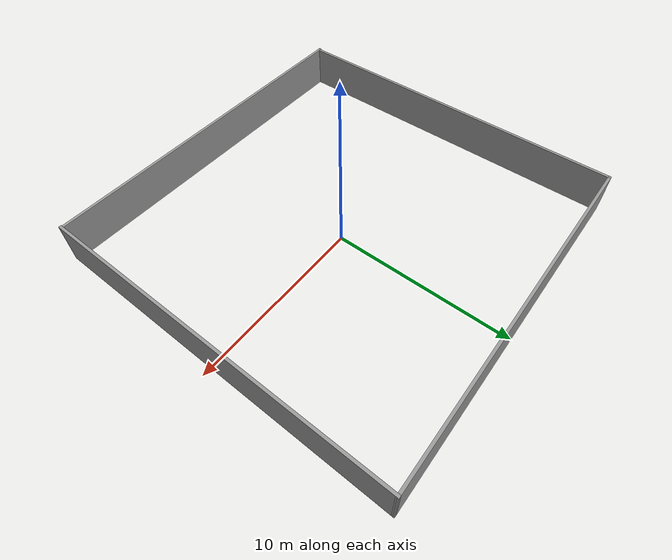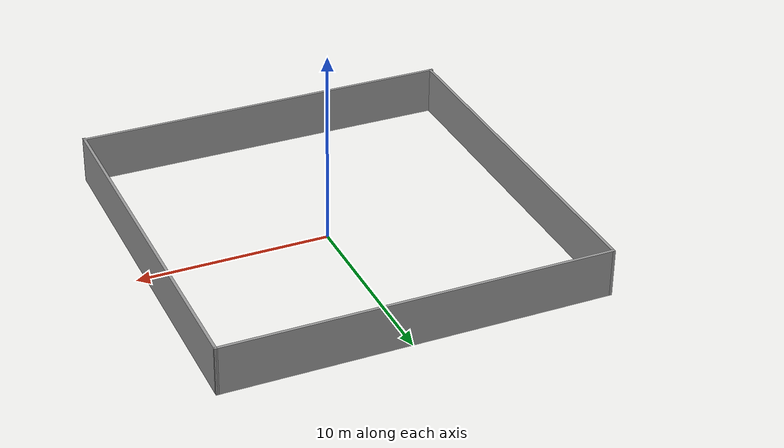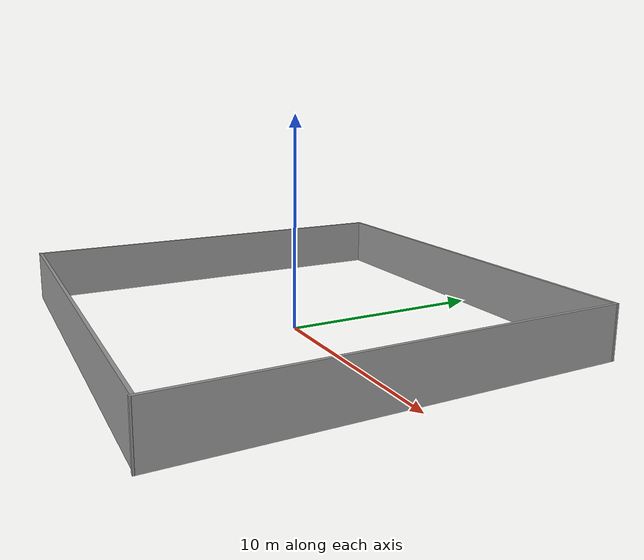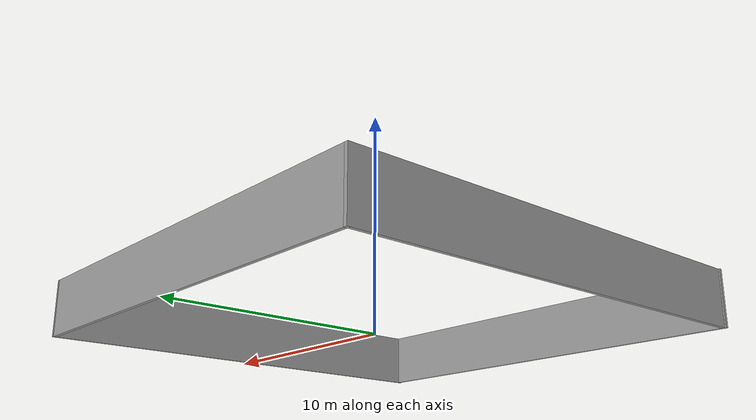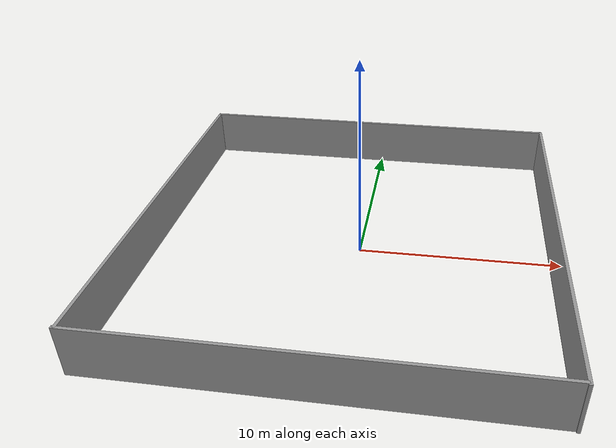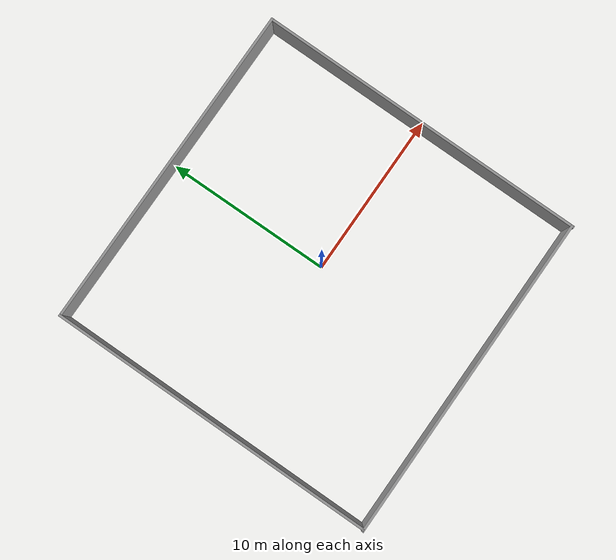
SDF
<?xml version='1.0'?>
<sdf version='1.6'>
  <model name='wall'>
    <pose frame=''>-0.458133 -0.044771 0 0 -0 0</pose>
    <link name='Wall_0'>
      <collision name='Wall_0_Collision'>
        <geometry>
          <box>
            <size>20 0.15 2.5</size>
          </box>
        </geometry>
        <pose frame=''>0 0 1.25 0 -0 0</pose>
      </collision>
      <visual name='Wall_0_Visual'>
        <pose frame=''>0 0 1.25 0 -0 0</pose>
        <geometry>
          <box>
            <size>20 0.15 2.5</size>
          </box>
        </geometry>
        <material>
          <script>
            <uri>file://media/materials/scripts/gazebo.material</uri>
            <name>Gazebo/Grey</name>
          </script>
          <ambient>1 1 1 1</ambient>
        </material>
      </visual>
      <pose frame=''>-9.89494 0.056022 0 0 -0 1.5708</pose>
    </link>
    <link name='Wall_2'>
      <collision name='Wall_2_Collision'>
        <geometry>
          <box>
            <size>20 0.15 2.5</size>
          </box>
        </geometry>
        <pose frame=''>0 0 1.25 0 -0 0</pose>
      </collision>
      <visual name='Wall_2_Visual'>
        <pose frame=''>0 0 1.25 0 -0 0</pose>
        <geometry>
          <box>
            <size>20 0.15 2.5</size>
          </box>
        </geometry>
        <material>
          <script>
            <uri>file://media/materials/scripts/gazebo.material</uri>
            <name>Gazebo/Grey</name>
          </script>
          <ambient>1 1 1 1</ambient>
        </material>
      </visual>
      <pose frame=''>0.030057 9.98102 0 0 -0 0</pose>
    </link>
    <link name='Wall_3'>
      <collision name='Wall_3_Collision'>
        <geometry>
          <box>
            <size>20.1121 0.15 2.5</size>
          </box>
        </geometry>
        <pose frame=''>0 0 1.25 0 -0 0</pose>
      </collision>
      <visual name='Wall_3_Visual'>
        <pose frame=''>0 0 1.25 0 -0 0</pose>
        <geometry>
          <box>
            <size>20.1121 0.15 2.5</size>
          </box>
        </geometry>
        <material>
          <script>
            <uri>file://media/materials/scripts/gazebo.material</uri>
            <name>Gazebo/Grey</name>
          </script>
          <ambient>1 1 1 1</ambient>
        </material>
      </visual>
      <pose frame=''>9.92489 0 0 0 0 -1.57382</pose>
    </link>
    <link name='Wall_4'>
      <collision name='Wall_4_Collision'>
        <geometry>
          <box>
            <size>20 0.15 2.5</size>
          </box>
        </geometry>
        <pose frame=''>0 0 1.25 0 -0 0</pose>
      </collision>
      <visual name='Wall_4_Visual'>
        <pose frame=''>0 0 1.25 0 -0 0</pose>
        <geometry>
          <box>
            <size>20 0.15 2.5</size>
          </box>
        </geometry>
        <material>
          <script>
            <uri>file://media/materials/scripts/gazebo.material</uri>
            <name>Gazebo/Grey</name>
          </script>
          <ambient>1 1 1 1</ambient>
        </material>
      </visual>
      <pose frame=''>-0.030284 -9.92068 0 0 -0 3.14159</pose>
    </link>
    <static>1</static>
  </model>
</sdf>
